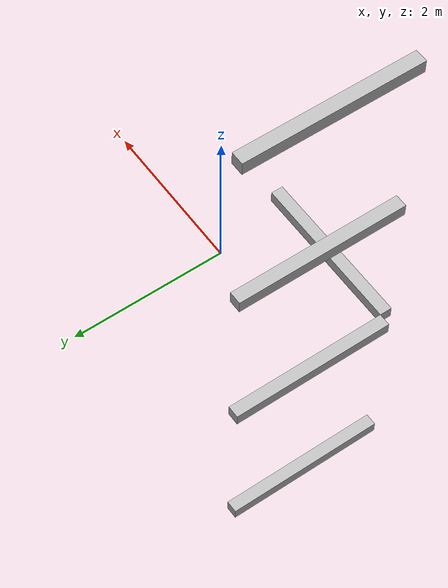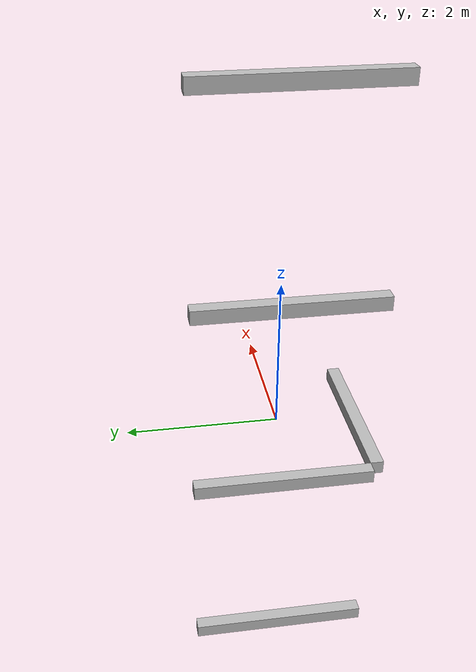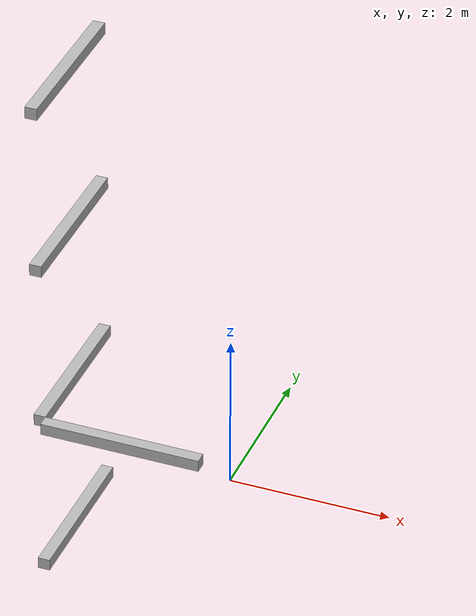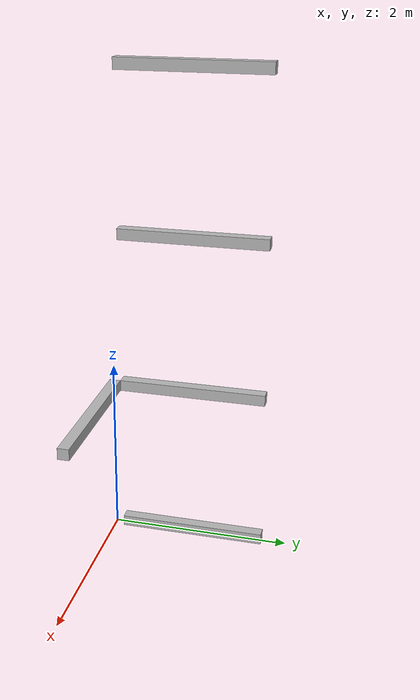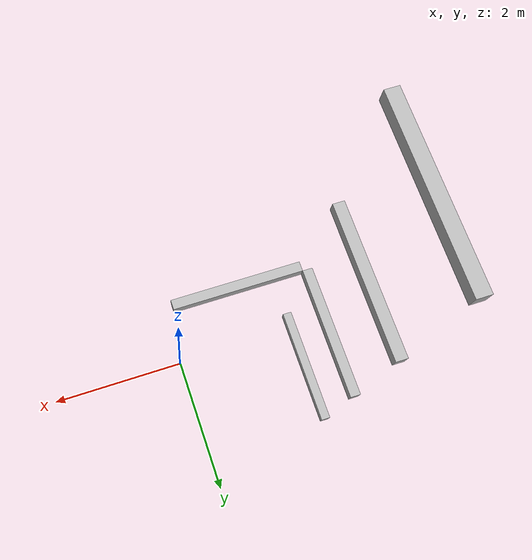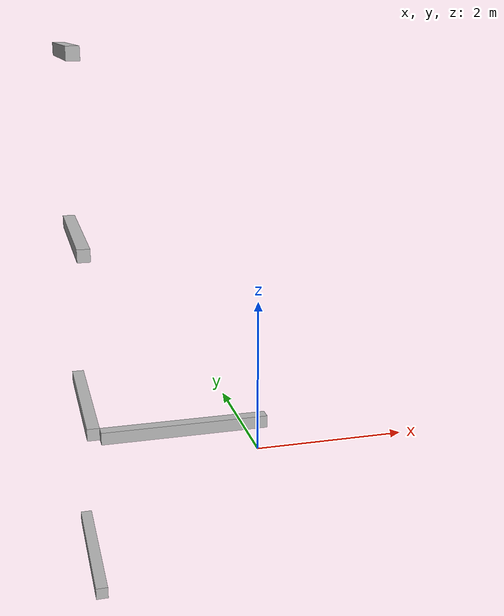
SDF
<sdf version="1.7">
 <world name="default">
  <model name="orthogonal_747_2.000.15_TS">
   <static>1</static>
   <link name="y_link_0_2_2">
    <inertial>
     <mass>1</mass>
     <inertia>
      <ixx>0.166667</ixx>
      <ixy>0</ixy>
      <ixz>0</ixz>
      <iyy>0.166667</iyy>
      <iyz>0</iyz>
      <izz>0.166667</izz>
     </inertia>
    </inertial>
    <pose>4.3 5.375 1.075 0 -0 0</pose>
    <visual name="visual_0">
     <laser_retro>372</laser_retro>
     <geometry><box><size>0.15 1e-06 0.15</size></box></geometry>
     <material>
      <script><name>Gazebo/Grey</name><uri>file://media/materials/scripts/gazebo.material</uri></script>
      <shader type="pixel"><normal_map>__default__</normal_map></shader>
      <ambient>0.678 0.498 0.659 1</ambient>
      <diffuse>0.7 0.7 0.7 1</diffuse>
      <specular>0.01 0.01 0.01 1</specular>
      <emissive>0 0 0 1</emissive>
     </material>
     <pose>0 -1 0 0 -0 0</pose>
     <transparency>1</transparency>
    </visual>
    <visual name="visual_1">
     <laser_retro>373</laser_retro>
     <geometry><box><size>0.15 1e-06 0.15</size></box></geometry>
     <material>
      <script><name>Gazebo/Grey</name><uri>file://media/materials/scripts/gazebo.material</uri></script>
      <shader type="pixel"><normal_map>__default__</normal_map></shader>
      <ambient>0.447 0.624 0.812 1</ambient>
      <diffuse>0.7 0.7 0.7 1</diffuse>
      <specular>0.01 0.01 0.01 1</specular>
      <emissive>0 0 0 1</emissive>
     </material>
     <pose>0 1 0 0 -0 0</pose>
     <transparency>1</transparency>
    </visual>
    <visual name="visual_2">
     <laser_retro>374</laser_retro>
     <geometry><box><size>0.15 2 1e-06</size></box></geometry>
     <material>
      <script><name>Gazebo/Grey</name><uri>file://media/materials/scripts/gazebo.material</uri></script>
      <shader type="pixel"><normal_map>__default__</normal_map></shader>
      <ambient>0.988 0.686 0.243 1</ambient>
      <diffuse>0.7 0.7 0.7 1</diffuse>
      <specular>0.01 0.01 0.01 1</specular>
      <emissive>0 0 0 1</emissive>
     </material>
     <pose>0 0 -0.075 0 -0 0</pose>
     <transparency>1</transparency>
    </visual>
    <visual name="visual_3">
     <laser_retro>375</laser_retro>
     <geometry><box><size>1e-06 2 0.15</size></box></geometry>
     <material>
      <script><name>Gazebo/Grey</name><uri>file://media/materials/scripts/gazebo.material</uri></script>
      <shader type="pixel"><normal_map>__default__</normal_map></shader>
      <ambient>0.988 0.914 0.31 1</ambient>
      <diffuse>0.7 0.7 0.7 1</diffuse>
      <specular>0.01 0.01 0.01 1</specular>
      <emissive>0 0 0 1</emissive>
     </material>
     <pose>0.075 0 0 0 -0 0</pose>
     <transparency>1</transparency>
    </visual>
    <visual name="visual_4">
     <laser_retro>376</laser_retro>
     <geometry><box><size>0.15 2 1e-06</size></box></geometry>
     <material>
      <script><name>Gazebo/Grey</name><uri>file://media/materials/scripts/gazebo.material</uri></script>
      <shader type="pixel"><normal_map>__default__</normal_map></shader>
      <ambient>0.937 0.161 0.161 1</ambient>
      <diffuse>0.7 0.7 0.7 1</diffuse>
      <specular>0.01 0.01 0.01 1</specular>
      <emissive>0 0 0 1</emissive>
     </material>
     <pose>0 0 0.075 0 -0 0</pose>
     <transparency>1</transparency>
    </visual>
    <visual name="visual_5">
     <laser_retro>377</laser_retro>
     <geometry><box><size>1e-06 2 0.15</size></box></geometry>
     <material>
      <script><name>Gazebo/Grey</name><uri>file://media/materials/scripts/gazebo.material</uri></script>
      <shader type="pixel"><normal_map>__default__</normal_map></shader>
      <ambient>0.541 0.886 0.204 1</ambient>
      <diffuse>0.7 0.7 0.7 1</diffuse>
      <specular>0.01 0.01 0.01 1</specular>
      <emissive>0 0 0 1</emissive>
     </material>
     <pose>-0.075 0 0 0 -0 0</pose>
     <transparency>1</transparency>
    </visual>
    <visual name="visual_texture">
     <geometry><box><size>0.149985 1.9998 0.149985</size></box></geometry>
     <material>
      <script>
       <uri>model://BASE_MODELS/simple_block_v2_textured/materials/scripts</uri>
       <uri>model://BASE_MODELS/simple_block_v2_textured/materials/textures</uri>
       <name>metal</name>
      </script>
     </material>
     <laser_retro>378</laser_retro>
    </visual>
    <collision name="collision">
     <geometry><box><size>0.15 2 0.15</size></box></geometry>
     <surface>
      <friction>
       <ode><mu>1</mu><mu2>1</mu2><fdir1>0 0 0</fdir1><slip1>0</slip1><slip2>0</slip2></ode>
       <torsional>
        <coefficient>1</coefficient>
        <patch_radius>0</patch_radius>
        <surface_radius>0</surface_radius>
        <use_patch_radius>1</use_patch_radius>
        <ode><slip>0</slip></ode>
       </torsional>
      </friction>
      <bounce><restitution_coefficient>0</restitution_coefficient><threshold>1e+06</threshold></bounce>
      <contact>
       <collide_without_contact>0</collide_without_contact>
       <collide_without_contact_bitmask>1</collide_without_contact_bitmask>
       <collide_bitmask>1</collide_bitmask>
       <ode>
        <soft_cfm>0</soft_cfm>
        <soft_erp>0.2</soft_erp>
        <kp>1e+13</kp>
        <kd>1</kd>
        <max_vel>0.01</max_vel>
        <min_depth>0</min_depth>
       </ode>
       <bullet>
        <split_impulse>1</split_impulse>
        <split_impulse_penetration_threshold>-0.01</split_impulse_penetration_threshold>
        <soft_cfm>0</soft_cfm>
        <soft_erp>0.2</soft_erp>
        <kp>1e+13</kp>
        <kd>1</kd>
       </bullet>
      </contact>
     </surface>
    </collision>
   </link>
   <link name="x_link_1_2_2">
    <inertial>
     <mass>1</mass>
     <inertia>
      <ixx>0.166667</ixx>
      <ixy>0</ixy>
      <ixz>0</ixz>
      <iyy>0.166667</iyy>
      <iyz>0</iyz>
      <izz>0.166667</izz>
     </inertia>
    </inertial>
    <pose>5.375 4.3 3.225 0 -0 0</pose>
    <visual name="visual_0">
     <laser_retro>1191</laser_retro>
     <geometry><box><size>2 1e-06 0.15</size></box></geometry>
     <material>
      <script><name>Gazebo/Grey</name><uri>file://media/materials/scripts/gazebo.material</uri></script>
      <shader type="pixel"><normal_map>__default__</normal_map></shader>
      <ambient>0.678 0.498 0.659 1</ambient>
      <diffuse>0.7 0.7 0.7 1</diffuse>
      <specular>0.01 0.01 0.01 1</specular>
      <emissive>0 0 0 1</emissive>
     </material>
     <pose>0 -0.075 0 0 -0 0</pose>
     <transparency>1</transparency>
    </visual>
    <visual name="visual_1">
     <laser_retro>1192</laser_retro>
     <geometry><box><size>2 1e-06 0.15</size></box></geometry>
     <material>
      <script><name>Gazebo/Grey</name><uri>file://media/materials/scripts/gazebo.material</uri></script>
      <shader type="pixel"><normal_map>__default__</normal_map></shader>
      <ambient>0.447 0.624 0.812 1</ambient>
      <diffuse>0.7 0.7 0.7 1</diffuse>
      <specular>0.01 0.01 0.01 1</specular>
      <emissive>0 0 0 1</emissive>
     </material>
     <pose>0 0.075 0 0 -0 0</pose>
     <transparency>1</transparency>
    </visual>
    <visual name="visual_2">
     <laser_retro>1193</laser_retro>
     <geometry><box><size>2 0.15 1e-06</size></box></geometry>
     <material>
      <script><name>Gazebo/Grey</name><uri>file://media/materials/scripts/gazebo.material</uri></script>
      <shader type="pixel"><normal_map>__default__</normal_map></shader>
      <ambient>0.988 0.686 0.243 1</ambient>
      <diffuse>0.7 0.7 0.7 1</diffuse>
      <specular>0.01 0.01 0.01 1</specular>
      <emissive>0 0 0 1</emissive>
     </material>
     <pose>0 0 -0.075 0 -0 0</pose>
     <transparency>1</transparency>
    </visual>
    <visual name="visual_3">
     <laser_retro>1194</laser_retro>
     <geometry><box><size>1e-06 0.15 0.15</size></box></geometry>
     <material>
      <script><name>Gazebo/Grey</name><uri>file://media/materials/scripts/gazebo.material</uri></script>
      <shader type="pixel"><normal_map>__default__</normal_map></shader>
      <ambient>0.988 0.914 0.31 1</ambient>
      <diffuse>0.7 0.7 0.7 1</diffuse>
      <specular>0.01 0.01 0.01 1</specular>
      <emissive>0 0 0 1</emissive>
     </material>
     <pose>1 0 0 0 -0 0</pose>
     <transparency>1</transparency>
    </visual>
    <visual name="visual_4">
     <laser_retro>1195</laser_retro>
     <geometry><box><size>2 0.15 1e-06</size></box></geometry>
     <material>
      <script><name>Gazebo/Grey</name><uri>file://media/materials/scripts/gazebo.material</uri></script>
      <shader type="pixel"><normal_map>__default__</normal_map></shader>
      <ambient>0.937 0.161 0.161 1</ambient>
      <diffuse>0.7 0.7 0.7 1</diffuse>
      <specular>0.01 0.01 0.01 1</specular>
      <emissive>0 0 0 1</emissive>
     </material>
     <pose>0 0 0.075 0 -0 0</pose>
     <transparency>1</transparency>
    </visual>
    <visual name="visual_5">
     <laser_retro>1196</laser_retro>
     <geometry><box><size>1e-06 0.15 0.15</size></box></geometry>
     <material>
      <script><name>Gazebo/Grey</name><uri>file://media/materials/scripts/gazebo.material</uri></script>
      <shader type="pixel"><normal_map>__default__</normal_map></shader>
      <ambient>0.541 0.886 0.204 1</ambient>
      <diffuse>0.7 0.7 0.7 1</diffuse>
      <specular>0.01 0.01 0.01 1</specular>
      <emissive>0 0 0 1</emissive>
     </material>
     <pose>-1 0 0 0 -0 0</pose>
     <transparency>1</transparency>
    </visual>
    <visual name="visual_texture">
     <geometry><box><size>1.9998 0.149985 0.149985</size></box></geometry>
     <material>
      <script>
       <uri>model://BASE_MODELS/simple_block_v2_textured/materials/scripts</uri>
       <uri>model://BASE_MODELS/simple_block_v2_textured/materials/textures</uri>
       <name>metal</name>
      </script>
     </material>
     <laser_retro>1197</laser_retro>
    </visual>
    <collision name="collision">
     <geometry><box><size>2 0.15 0.15</size></box></geometry>
     <surface>
      <friction>
       <ode><mu>1</mu><mu2>1</mu2><fdir1>0 0 0</fdir1><slip1>0</slip1><slip2>0</slip2></ode>
       <torsional>
        <coefficient>1</coefficient>
        <patch_radius>0</patch_radius>
        <surface_radius>0</surface_radius>
        <use_patch_radius>1</use_patch_radius>
        <ode><slip>0</slip></ode>
       </torsional>
      </friction>
      <bounce><restitution_coefficient>0</restitution_coefficient><threshold>1e+06</threshold></bounce>
      <contact>
       <collide_without_contact>0</collide_without_contact>
       <collide_without_contact_bitmask>1</collide_without_contact_bitmask>
       <collide_bitmask>1</collide_bitmask>
       <ode>
        <soft_cfm>0</soft_cfm>
        <soft_erp>0.2</soft_erp>
        <kp>1e+13</kp>
        <kd>1</kd>
        <max_vel>0.01</max_vel>
        <min_depth>0</min_depth>
       </ode>
       <bullet>
        <split_impulse>1</split_impulse>
        <split_impulse_penetration_threshold>-0.01</split_impulse_penetration_threshold>
        <soft_cfm>0</soft_cfm>
        <soft_erp>0.2</soft_erp>
        <kp>1e+13</kp>
        <kd>1</kd>
       </bullet>
      </contact>
     </surface>
    </collision>
   </link>
   <link name="y_link_1_2_2">
    <inertial>
     <mass>1</mass>
     <inertia>
      <ixx>0.166667</ixx>
      <ixy>0</ixy>
      <ixz>0</ixz>
      <iyy>0.166667</iyy>
      <iyz>0</iyz>
      <izz>0.166667</izz>
     </inertia>
    </inertial>
    <pose>4.3 5.375 3.225 0 -0 0</pose>
    <visual name="visual_0">
     <laser_retro>1198</laser_retro>
     <geometry><box><size>0.15 1e-06 0.15</size></box></geometry>
     <material>
      <script><name>Gazebo/Grey</name><uri>file://media/materials/scripts/gazebo.material</uri></script>
      <shader type="pixel"><normal_map>__default__</normal_map></shader>
      <ambient>0.678 0.498 0.659 1</ambient>
      <diffuse>0.7 0.7 0.7 1</diffuse>
      <specular>0.01 0.01 0.01 1</specular>
      <emissive>0 0 0 1</emissive>
     </material>
     <pose>0 -1 0 0 -0 0</pose>
     <transparency>1</transparency>
    </visual>
    <visual name="visual_1">
     <laser_retro>1199</laser_retro>
     <geometry><box><size>0.15 1e-06 0.15</size></box></geometry>
     <material>
      <script><name>Gazebo/Grey</name><uri>file://media/materials/scripts/gazebo.material</uri></script>
      <shader type="pixel"><normal_map>__default__</normal_map></shader>
      <ambient>0.447 0.624 0.812 1</ambient>
      <diffuse>0.7 0.7 0.7 1</diffuse>
      <specular>0.01 0.01 0.01 1</specular>
      <emissive>0 0 0 1</emissive>
     </material>
     <pose>0 1 0 0 -0 0</pose>
     <transparency>1</transparency>
    </visual>
    <visual name="visual_2">
     <laser_retro>1200</laser_retro>
     <geometry><box><size>0.15 2 1e-06</size></box></geometry>
     <material>
      <script><name>Gazebo/Grey</name><uri>file://media/materials/scripts/gazebo.material</uri></script>
      <shader type="pixel"><normal_map>__default__</normal_map></shader>
      <ambient>0.988 0.686 0.243 1</ambient>
      <diffuse>0.7 0.7 0.7 1</diffuse>
      <specular>0.01 0.01 0.01 1</specular>
      <emissive>0 0 0 1</emissive>
     </material>
     <pose>0 0 -0.075 0 -0 0</pose>
     <transparency>1</transparency>
    </visual>
    <visual name="visual_3">
     <laser_retro>1201</laser_retro>
     <geometry><box><size>1e-06 2 0.15</size></box></geometry>
     <material>
      <script><name>Gazebo/Grey</name><uri>file://media/materials/scripts/gazebo.material</uri></script>
      <shader type="pixel"><normal_map>__default__</normal_map></shader>
      <ambient>0.988 0.914 0.31 1</ambient>
      <diffuse>0.7 0.7 0.7 1</diffuse>
      <specular>0.01 0.01 0.01 1</specular>
      <emissive>0 0 0 1</emissive>
     </material>
     <pose>0.075 0 0 0 -0 0</pose>
     <transparency>1</transparency>
    </visual>
    <visual name="visual_4">
     <laser_retro>1202</laser_retro>
     <geometry><box><size>0.15 2 1e-06</size></box></geometry>
     <material>
      <script><name>Gazebo/Grey</name><uri>file://media/materials/scripts/gazebo.material</uri></script>
      <shader type="pixel"><normal_map>__default__</normal_map></shader>
      <ambient>0.937 0.161 0.161 1</ambient>
      <diffuse>0.7 0.7 0.7 1</diffuse>
      <specular>0.01 0.01 0.01 1</specular>
      <emissive>0 0 0 1</emissive>
     </material>
     <pose>0 0 0.075 0 -0 0</pose>
     <transparency>1</transparency>
    </visual>
    <visual name="visual_5">
     <laser_retro>1203</laser_retro>
     <geometry><box><size>1e-06 2 0.15</size></box></geometry>
     <material>
      <script><name>Gazebo/Grey</name><uri>file://media/materials/scripts/gazebo.material</uri></script>
      <shader type="pixel"><normal_map>__default__</normal_map></shader>
      <ambient>0.541 0.886 0.204 1</ambient>
      <diffuse>0.7 0.7 0.7 1</diffuse>
      <specular>0.01 0.01 0.01 1</specular>
      <emissive>0 0 0 1</emissive>
     </material>
     <pose>-0.075 0 0 0 -0 0</pose>
     <transparency>1</transparency>
    </visual>
    <visual name="visual_texture">
     <geometry><box><size>0.149985 1.9998 0.149985</size></box></geometry>
     <material>
      <script>
       <uri>model://BASE_MODELS/simple_block_v2_textured/materials/scripts</uri>
       <uri>model://BASE_MODELS/simple_block_v2_textured/materials/textures</uri>
       <name>metal</name>
      </script>
     </material>
     <laser_retro>1204</laser_retro>
    </visual>
    <collision name="collision">
     <geometry><box><size>0.15 2 0.15</size></box></geometry>
     <surface>
      <friction>
       <ode><mu>1</mu><mu2>1</mu2><fdir1>0 0 0</fdir1><slip1>0</slip1><slip2>0</slip2></ode>
       <torsional>
        <coefficient>1</coefficient>
        <patch_radius>0</patch_radius>
        <surface_radius>0</surface_radius>
        <use_patch_radius>1</use_patch_radius>
        <ode><slip>0</slip></ode>
       </torsional>
      </friction>
      <bounce><restitution_coefficient>0</restitution_coefficient><threshold>1e+06</threshold></bounce>
      <contact>
       <collide_without_contact>0</collide_without_contact>
       <collide_without_contact_bitmask>1</collide_without_contact_bitmask>
       <collide_bitmask>1</collide_bitmask>
       <ode>
        <soft_cfm>0</soft_cfm>
        <soft_erp>0.2</soft_erp>
        <kp>1e+13</kp>
        <kd>1</kd>
        <max_vel>0.01</max_vel>
        <min_depth>0</min_depth>
       </ode>
       <bullet>
        <split_impulse>1</split_impulse>
        <split_impulse_penetration_threshold>-0.01</split_impulse_penetration_threshold>
        <soft_cfm>0</soft_cfm>
        <soft_erp>0.2</soft_erp>
        <kp>1e+13</kp>
        <kd>1</kd>
       </bullet>
      </contact>
     </surface>
    </collision>
   </link>
   <link name="y_link_2_2_2">
    <inertial>
     <mass>1</mass>
     <inertia>
      <ixx>0.166667</ixx>
      <ixy>0</ixy>
      <ixz>0</ixz>
      <iyy>0.166667</iyy>
      <iyz>0</iyz>
      <izz>0.166667</izz>
     </inertia>
    </inertial>
    <pose>4.3 5.375 5.375 0 -0 0</pose>
    <visual name="visual_0">
     <laser_retro>2101</laser_retro>
     <geometry><box><size>0.15 1e-06 0.15</size></box></geometry>
     <material>
      <script><name>Gazebo/Grey</name><uri>file://media/materials/scripts/gazebo.material</uri></script>
      <shader type="pixel"><normal_map>__default__</normal_map></shader>
      <ambient>0.678 0.498 0.659 1</ambient>
      <diffuse>0.7 0.7 0.7 1</diffuse>
      <specular>0.01 0.01 0.01 1</specular>
      <emissive>0 0 0 1</emissive>
     </material>
     <pose>0 -1 0 0 -0 0</pose>
     <transparency>1</transparency>
    </visual>
    <visual name="visual_1">
     <laser_retro>2102</laser_retro>
     <geometry><box><size>0.15 1e-06 0.15</size></box></geometry>
     <material>
      <script><name>Gazebo/Grey</name><uri>file://media/materials/scripts/gazebo.material</uri></script>
      <shader type="pixel"><normal_map>__default__</normal_map></shader>
      <ambient>0.447 0.624 0.812 1</ambient>
      <diffuse>0.7 0.7 0.7 1</diffuse>
      <specular>0.01 0.01 0.01 1</specular>
      <emissive>0 0 0 1</emissive>
     </material>
     <pose>0 1 0 0 -0 0</pose>
     <transparency>1</transparency>
    </visual>
    <visual name="visual_2">
     <laser_retro>2103</laser_retro>
     <geometry><box><size>0.15 2 1e-06</size></box></geometry>
     <material>
      <script><name>Gazebo/Grey</name><uri>file://media/materials/scripts/gazebo.material</uri></script>
      <shader type="pixel"><normal_map>__default__</normal_map></shader>
      <ambient>0.988 0.686 0.243 1</ambient>
      <diffuse>0.7 0.7 0.7 1</diffuse>
      <specular>0.01 0.01 0.01 1</specular>
      <emissive>0 0 0 1</emissive>
     </material>
     <pose>0 0 -0.075 0 -0 0</pose>
     <transparency>1</transparency>
    </visual>
    <visual name="visual_3">
     <laser_retro>2104</laser_retro>
     <geometry><box><size>1e-06 2 0.15</size></box></geometry>
     <material>
      <script><name>Gazebo/Grey</name><uri>file://media/materials/scripts/gazebo.material</uri></script>
      <shader type="pixel"><normal_map>__default__</normal_map></shader>
      <ambient>0.988 0.914 0.31 1</ambient>
      <diffuse>0.7 0.7 0.7 1</diffuse>
      <specular>0.01 0.01 0.01 1</specular>
      <emissive>0 0 0 1</emissive>
     </material>
     <pose>0.075 0 0 0 -0 0</pose>
     <transparency>1</transparency>
    </visual>
    <visual name="visual_4">
     <laser_retro>2105</laser_retro>
     <geometry><box><size>0.15 2 1e-06</size></box></geometry>
     <material>
      <script><name>Gazebo/Grey</name><uri>file://media/materials/scripts/gazebo.material</uri></script>
      <shader type="pixel"><normal_map>__default__</normal_map></shader>
      <ambient>0.937 0.161 0.161 1</ambient>
      <diffuse>0.7 0.7 0.7 1</diffuse>
      <specular>0.01 0.01 0.01 1</specular>
      <emissive>0 0 0 1</emissive>
     </material>
     <pose>0 0 0.075 0 -0 0</pose>
     <transparency>1</transparency>
    </visual>
    <visual name="visual_5">
     <laser_retro>2106</laser_retro>
     <geometry><box><size>1e-06 2 0.15</size></box></geometry>
     <material>
      <script><name>Gazebo/Grey</name><uri>file://media/materials/scripts/gazebo.material</uri></script>
      <shader type="pixel"><normal_map>__default__</normal_map></shader>
      <ambient>0.541 0.886 0.204 1</ambient>
      <diffuse>0.7 0.7 0.7 1</diffuse>
      <specular>0.01 0.01 0.01 1</specular>
      <emissive>0 0 0 1</emissive>
     </material>
     <pose>-0.075 0 0 0 -0 0</pose>
     <transparency>1</transparency>
    </visual>
    <visual name="visual_texture">
     <geometry><box><size>0.149985 1.9998 0.149985</size></box></geometry>
     <material>
      <script>
       <uri>model://BASE_MODELS/simple_block_v2_textured/materials/scripts</uri>
       <uri>model://BASE_MODELS/simple_block_v2_textured/materials/textures</uri>
       <name>metal</name>
      </script>
     </material>
     <laser_retro>2107</laser_retro>
    </visual>
    <collision name="collision">
     <geometry><box><size>0.15 2 0.15</size></box></geometry>
     <surface>
      <friction>
       <ode><mu>1</mu><mu2>1</mu2><fdir1>0 0 0</fdir1><slip1>0</slip1><slip2>0</slip2></ode>
       <torsional>
        <coefficient>1</coefficient>
        <patch_radius>0</patch_radius>
        <surface_radius>0</surface_radius>
        <use_patch_radius>1</use_patch_radius>
        <ode><slip>0</slip></ode>
       </torsional>
      </friction>
      <bounce><restitution_coefficient>0</restitution_coefficient><threshold>1e+06</threshold></bounce>
      <contact>
       <collide_without_contact>0</collide_without_contact>
       <collide_without_contact_bitmask>1</collide_without_contact_bitmask>
       <collide_bitmask>1</collide_bitmask>
       <ode>
        <soft_cfm>0</soft_cfm>
        <soft_erp>0.2</soft_erp>
        <kp>1e+13</kp>
        <kd>1</kd>
        <max_vel>0.01</max_vel>
        <min_depth>0</min_depth>
       </ode>
       <bullet>
        <split_impulse>1</split_impulse>
        <split_impulse_penetration_threshold>-0.01</split_impulse_penetration_threshold>
        <soft_cfm>0</soft_cfm>
        <soft_erp>0.2</soft_erp>
        <kp>1e+13</kp>
        <kd>1</kd>
       </bullet>
      </contact>
     </surface>
    </collision>
   </link>
   <link name="y_link_3_2_2">
    <inertial>
     <mass>1</mass>
     <inertia>
      <ixx>0.166667</ixx>
      <ixy>0</ixy>
      <ixz>0</ixz>
      <iyy>0.166667</iyy>
      <iyz>0</iyz>
      <izz>0.166667</izz>
     </inertia>
    </inertial>
    <pose>4.3 5.375 7.525 0 -0 0</pose>
    <visual name="visual_0">
     <laser_retro>3004</laser_retro>
     <geometry><box><size>0.15 1e-06 0.15</size></box></geometry>
     <material>
      <script><name>Gazebo/Grey</name><uri>file://media/materials/scripts/gazebo.material</uri></script>
      <shader type="pixel"><normal_map>__default__</normal_map></shader>
      <ambient>0.678 0.498 0.659 1</ambient>
      <diffuse>0.7 0.7 0.7 1</diffuse>
      <specular>0.01 0.01 0.01 1</specular>
      <emissive>0 0 0 1</emissive>
     </material>
     <pose>0 -1 0 0 -0 0</pose>
     <transparency>1</transparency>
    </visual>
    <visual name="visual_1">
     <laser_retro>3005</laser_retro>
     <geometry><box><size>0.15 1e-06 0.15</size></box></geometry>
     <material>
      <script><name>Gazebo/Grey</name><uri>file://media/materials/scripts/gazebo.material</uri></script>
      <shader type="pixel"><normal_map>__default__</normal_map></shader>
      <ambient>0.447 0.624 0.812 1</ambient>
      <diffuse>0.7 0.7 0.7 1</diffuse>
      <specular>0.01 0.01 0.01 1</specular>
      <emissive>0 0 0 1</emissive>
     </material>
     <pose>0 1 0 0 -0 0</pose>
     <transparency>1</transparency>
    </visual>
    <visual name="visual_2">
     <laser_retro>3006</laser_retro>
     <geometry><box><size>0.15 2 1e-06</size></box></geometry>
     <material>
      <script><name>Gazebo/Grey</name><uri>file://media/materials/scripts/gazebo.material</uri></script>
      <shader type="pixel"><normal_map>__default__</normal_map></shader>
      <ambient>0.988 0.686 0.243 1</ambient>
      <diffuse>0.7 0.7 0.7 1</diffuse>
      <specular>0.01 0.01 0.01 1</specular>
      <emissive>0 0 0 1</emissive>
     </material>
     <pose>0 0 -0.075 0 -0 0</pose>
     <transparency>1</transparency>
    </visual>
    <visual name="visual_3">
     <laser_retro>3007</laser_retro>
     <geometry><box><size>1e-06 2 0.15</size></box></geometry>
     <material>
      <script><name>Gazebo/Grey</name><uri>file://media/materials/scripts/gazebo.material</uri></script>
      <shader type="pixel"><normal_map>__default__</normal_map></shader>
      <ambient>0.988 0.914 0.31 1</ambient>
      <diffuse>0.7 0.7 0.7 1</diffuse>
      <specular>0.01 0.01 0.01 1</specular>
      <emissive>0 0 0 1</emissive>
     </material>
     <pose>0.075 0 0 0 -0 0</pose>
     <transparency>1</transparency>
    </visual>
    <visual name="visual_4">
     <laser_retro>3008</laser_retro>
     <geometry><box><size>0.15 2 1e-06</size></box></geometry>
     <material>
      <script><name>Gazebo/Grey</name><uri>file://media/materials/scripts/gazebo.material</uri></script>
      <shader type="pixel"><normal_map>__default__</normal_map></shader>
      <ambient>0.937 0.161 0.161 1</ambient>
      <diffuse>0.7 0.7 0.7 1</diffuse>
      <specular>0.01 0.01 0.01 1</specular>
      <emissive>0 0 0 1</emissive>
     </material>
     <pose>0 0 0.075 0 -0 0</pose>
     <transparency>1</transparency>
    </visual>
    <visual name="visual_5">
     <laser_retro>3009</laser_retro>
     <geometry><box><size>1e-06 2 0.15</size></box></geometry>
     <material>
      <script><name>Gazebo/Grey</name><uri>file://media/materials/scripts/gazebo.material</uri></script>
      <shader type="pixel"><normal_map>__default__</normal_map></shader>
      <ambient>0.541 0.886 0.204 1</ambient>
      <diffuse>0.7 0.7 0.7 1</diffuse>
      <specular>0.01 0.01 0.01 1</specular>
      <emissive>0 0 0 1</emissive>
     </material>
     <pose>-0.075 0 0 0 -0 0</pose>
     <transparency>1</transparency>
    </visual>
    <visual name="visual_texture">
     <geometry><box><size>0.149985 1.9998 0.149985</size></box></geometry>
     <material>
      <script>
       <uri>model://BASE_MODELS/simple_block_v2_textured/materials/scripts</uri>
       <uri>model://BASE_MODELS/simple_block_v2_textured/materials/textures</uri>
       <name>metal</name>
      </script>
     </material>
     <laser_retro>3010</laser_retro>
    </visual>
    <collision name="collision">
     <geometry><box><size>0.15 2 0.15</size></box></geometry>
     <surface>
      <friction>
       <ode><mu>1</mu><mu2>1</mu2><fdir1>0 0 0</fdir1><slip1>0</slip1><slip2>0</slip2></ode>
       <torsional>
        <coefficient>1</coefficient>
        <patch_radius>0</patch_radius>
        <surface_radius>0</surface_radius>
        <use_patch_radius>1</use_patch_radius>
        <ode><slip>0</slip></ode>
       </torsional>
      </friction>
      <bounce><restitution_coefficient>0</restitution_coefficient><threshold>1e+06</threshold></bounce>
      <contact>
       <collide_without_contact>0</collide_without_contact>
       <collide_without_contact_bitmask>1</collide_without_contact_bitmask>
       <collide_bitmask>1</collide_bitmask>
       <ode>
        <soft_cfm>0</soft_cfm>
        <soft_erp>0.2</soft_erp>
        <kp>1e+13</kp>
        <kd>1</kd>
        <max_vel>0.01</max_vel>
        <min_depth>0</min_depth>
       </ode>
       <bullet>
        <split_impulse>1</split_impulse>
        <split_impulse_penetration_threshold>-0.01</split_impulse_penetration_threshold>
        <soft_cfm>0</soft_cfm>
        <soft_erp>0.2</soft_erp>
        <kp>1e+13</kp>
        <kd>1</kd>
       </bullet>
      </contact>
     </surface>
    </collision>
   </link>
   <pose>-6.47624 -5 -2.5 0 -0 0</pose>
  </model>
 </world>
</sdf>
